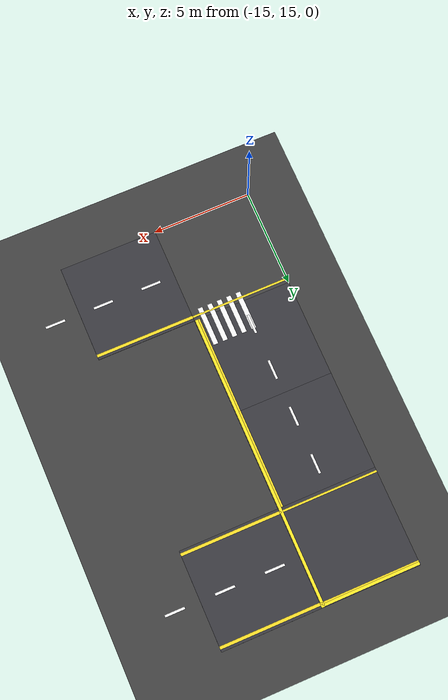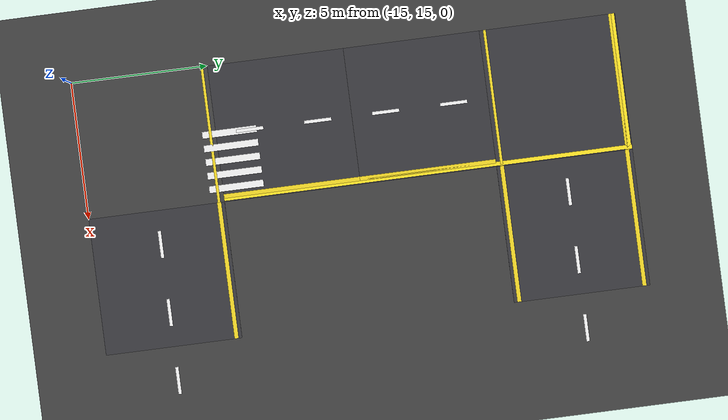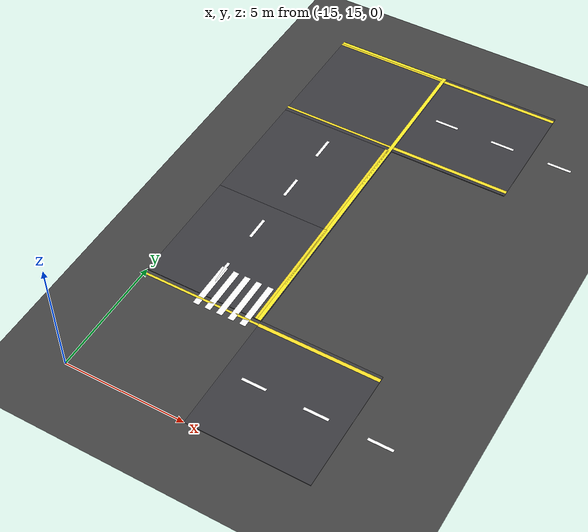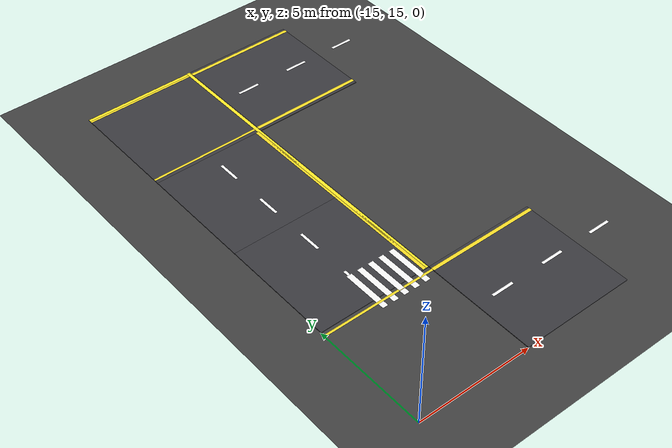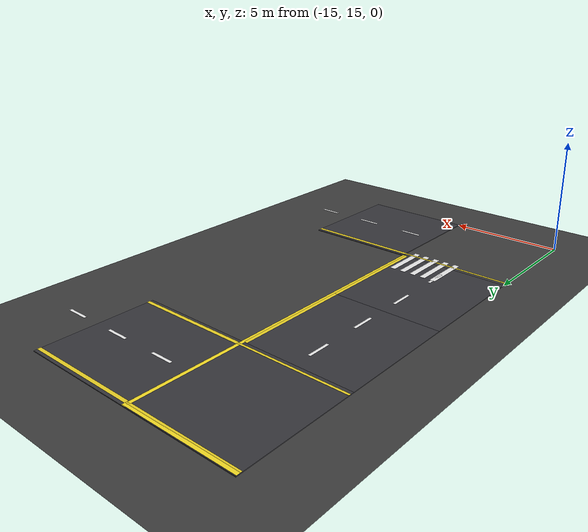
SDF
<sdf version="1.7">
 <world name="compact_city">
  <model name="ground_plane">
   <static>1</static>
   <pose>0 0 0.01 0 -0 0</pose>
   <link name="link">
    <collision name="collision">
     <geometry><plane><normal>0 0 1</normal><size>200 200</size></plane></geometry>
    </collision>
    <visual name="visual">
     <geometry><plane><normal>0 0 1</normal><size>200 200</size></plane></geometry>
     <material>
      <ambient>0.2 0.2 0.2 1</ambient>
      <diffuse>0.25 0.25 0.25 1</diffuse>
      <specular>0.1 0.1 0.1 1</specular>
     </material>
    </visual>
   </link>
  </model>
  <model name="road_tile_4">
   <static>1</static>
   <pose>-12.5 32.5 0.015 0 -0 0</pose>
   <link name="link">
    <collision name="collision"><geometry><box><size>5 5 0.03</size></box></geometry></collision>
    <visual name="visual">
     <geometry><box><size>5 5 0.03</size></box></geometry>
     <material>
      <ambient>0.18 0.18 0.2 1</ambient>
      <diffuse>0.22 0.22 0.24 1</diffuse>
      <specular>0.1 0.1 0.1 1</specular>
     </material>
    </visual>
   </link>
  </model>
  <model name="road_tile_5">
   <static>1</static>
   <pose>-7.5 32.5 0.015 0 -0 0</pose>
   <link name="link">
    <collision name="collision"><geometry><box><size>5 5 0.03</size></box></geometry></collision>
    <visual name="visual">
     <geometry><box><size>5 5 0.03</size></box></geometry>
     <material>
      <ambient>0.18 0.18 0.2 1</ambient>
      <diffuse>0.22 0.22 0.24 1</diffuse>
      <specular>0.1 0.1 0.1 1</specular>
     </material>
    </visual>
   </link>
  </model>
  <model name="road_tile_14">
   <static>1</static>
   <pose>-12.5 27.5 0.015 0 -0 1.5708</pose>
   <link name="link">
    <collision name="collision"><geometry><box><size>5 5 0.03</size></box></geometry></collision>
    <visual name="visual">
     <geometry><box><size>5 5 0.03</size></box></geometry>
     <material>
      <ambient>0.18 0.18 0.2 1</ambient>
      <diffuse>0.22 0.22 0.24 1</diffuse>
      <specular>0.1 0.1 0.1 1</specular>
     </material>
    </visual>
   </link>
  </model>
  <model name="road_tile_18">
   <static>1</static>
   <pose>-12.5 22.5 0.015 0 -0 1.5708</pose>
   <link name="link">
    <collision name="collision"><geometry><box><size>5 5 0.03</size></box></geometry></collision>
    <visual name="visual">
     <geometry><box><size>5 5 0.03</size></box></geometry>
     <material>
      <ambient>0.18 0.18 0.2 1</ambient>
      <diffuse>0.22 0.22 0.24 1</diffuse>
      <specular>0.1 0.1 0.1 1</specular>
     </material>
    </visual>
   </link>
  </model>
  <model name="road_tile_25">
   <static>1</static>
   <pose>-7.5 17.5 0.015 0 -0 0</pose>
   <link name="link">
    <collision name="collision"><geometry><box><size>5 5 0.03</size></box></geometry></collision>
    <visual name="visual">
     <geometry><box><size>5 5 0.03</size></box></geometry>
     <material>
      <ambient>0.18 0.18 0.2 1</ambient>
      <diffuse>0.22 0.22 0.24 1</diffuse>
      <specular>0.1 0.1 0.1 1</specular>
     </material>
    </visual>
   </link>
  </model>
  <model name="el_176">
   <static>1</static>
   <pose>-10.2 22.5 0.038 0 -0 1.5708</pose>
   <link name="link">
    <visual name="v">
     <geometry><box><size>5 0.15 0.002</size></box></geometry>
     <material><ambient>0.9 0.8 0.1 1</ambient><diffuse>0.95 0.85 0.15 1</diffuse></material>
    </visual>
   </link>
  </model>
  <model name="el_178">
   <static>1</static>
   <pose>-10.2 27.5 0.038 0 -0 1.5708</pose>
   <link name="link">
    <visual name="v">
     <geometry><box><size>5 0.15 0.002</size></box></geometry>
     <material><ambient>0.9 0.8 0.1 1</ambient><diffuse>0.95 0.85 0.15 1</diffuse></material>
    </visual>
   </link>
  </model>
  <model name="el_184">
   <static>1</static>
   <pose>-7.5 19.8 0.038 0 -0 0</pose>
   <link name="link">
    <visual name="v">
     <geometry><box><size>5 0.15 0.002</size></box></geometry>
     <material><ambient>0.9 0.8 0.1 1</ambient><diffuse>0.95 0.85 0.15 1</diffuse></material>
    </visual>
   </link>
  </model>
  <model name="el_185">
   <static>1</static>
   <pose>-7.5 30.2 0.038 0 -0 0</pose>
   <link name="link">
    <visual name="v">
     <geometry><box><size>5 0.15 0.002</size></box></geometry>
     <material><ambient>0.9 0.8 0.1 1</ambient><diffuse>0.95 0.85 0.15 1</diffuse></material>
    </visual>
   </link>
  </model>
  <model name="el_186">
   <static>1</static>
   <pose>-7.5 34.8 0.038 0 -0 0</pose>
   <link name="link">
    <visual name="v">
     <geometry><box><size>5 0.15 0.002</size></box></geometry>
     <material><ambient>0.9 0.8 0.1 1</ambient><diffuse>0.95 0.85 0.15 1</diffuse></material>
    </visual>
   </link>
  </model>
  <model name="ld_29">
   <static>1</static>
   <pose>-12.5000 21.2500 0.038 0 -0 1.5708</pose>
   <link name="link">
    <visual name="v">
     <geometry><box><size>1 0.12 0.002</size></box></geometry>
     <material><ambient>1 1 1 1</ambient><diffuse>0.95 0.95 0.95 1</diffuse></material>
    </visual>
   </link>
  </model>
  <model name="ld_30">
   <static>1</static>
   <pose>-12.5000 23.7500 0.038 0 -0 1.5708</pose>
   <link name="link">
    <visual name="v">
     <geometry><box><size>1 0.12 0.002</size></box></geometry>
     <material><ambient>1 1 1 1</ambient><diffuse>0.95 0.95 0.95 1</diffuse></material>
    </visual>
   </link>
  </model>
  <model name="ld_31">
   <static>1</static>
   <pose>-12.5000 26.2500 0.038 0 -0 1.5708</pose>
   <link name="link">
    <visual name="v">
     <geometry><box><size>1 0.12 0.002</size></box></geometry>
     <material><ambient>1 1 1 1</ambient><diffuse>0.95 0.95 0.95 1</diffuse></material>
    </visual>
   </link>
  </model>
  <model name="ld_32">
   <static>1</static>
   <pose>-12.5000 28.7500 0.038 0 -0 1.5708</pose>
   <link name="link">
    <visual name="v">
     <geometry><box><size>1 0.12 0.002</size></box></geometry>
     <material><ambient>1 1 1 1</ambient><diffuse>0.95 0.95 0.95 1</diffuse></material>
    </visual>
   </link>
  </model>
  <model name="ld_73">
   <static>1</static>
   <pose>-8.7500 32.5000 0.038 0 0 0</pose>
   <link name="link">
    <visual name="v">
     <geometry><box><size>1 0.12 0.002</size></box></geometry>
     <material><ambient>1 1 1 1</ambient><diffuse>0.95 0.95 0.95 1</diffuse></material>
    </visual>
   </link>
  </model>
  <model name="ld_74">
   <static>1</static>
   <pose>-6.2500 32.5000 0.038 0 0 0</pose>
   <link name="link">
    <visual name="v">
     <geometry><box><size>1 0.12 0.002</size></box></geometry>
     <material><ambient>1 1 1 1</ambient><diffuse>0.95 0.95 0.95 1</diffuse></material>
    </visual>
   </link>
  </model>
  <model name="ld_75">
   <static>1</static>
   <pose>-3.7500 32.5000 0.038 0 0 0</pose>
   <link name="link">
    <visual name="v">
     <geometry><box><size>1 0.12 0.002</size></box></geometry>
     <material><ambient>1 1 1 1</ambient><diffuse>0.95 0.95 0.95 1</diffuse></material>
    </visual>
   </link>
  </model>
  <model name="ld_89">
   <static>1</static>
   <pose>-8.7500 17.5000 0.038 0 0 0</pose>
   <link name="link">
    <visual name="v">
     <geometry><box><size>1 0.12 0.002</size></box></geometry>
     <material><ambient>1 1 1 1</ambient><diffuse>0.95 0.95 0.95 1</diffuse></material>
    </visual>
   </link>
  </model>
  <model name="ld_90">
   <static>1</static>
   <pose>-6.2500 17.5000 0.038 0 0 0</pose>
   <link name="link">
    <visual name="v">
     <geometry><box><size>1 0.12 0.002</size></box></geometry>
     <material><ambient>1 1 1 1</ambient><diffuse>0.95 0.95 0.95 1</diffuse></material>
    </visual>
   </link>
  </model>
  <model name="ld_91">
   <static>1</static>
   <pose>-3.7500 17.5000 0.038 0 0 0</pose>
   <link name="link">
    <visual name="v">
     <geometry><box><size>1 0.12 0.002</size></box></geometry>
     <material><ambient>1 1 1 1</ambient><diffuse>0.95 0.95 0.95 1</diffuse></material>
    </visual>
   </link>
  </model>
  <model name="ie_293">
   <static>1</static>
   <pose>-12.5 19.8 0.038 0 -0 0</pose>
   <link name="link">
    <visual name="v">
     <geometry><box><size>5 0.1 0.002</size></box></geometry>
     <material><ambient>0.9 0.8 0.1 1</ambient><diffuse>0.95 0.85 0.15 1</diffuse></material>
    </visual>
   </link>
  </model>
  <model name="ie_298">
   <static>1</static>
   <pose>-12.5 30.2 0.038 0 -0 0</pose>
   <link name="link">
    <visual name="v">
     <geometry><box><size>5 0.1 0.002</size></box></geometry>
     <material><ambient>0.9 0.8 0.1 1</ambient><diffuse>0.95 0.85 0.15 1</diffuse></material>
    </visual>
   </link>
  </model>
  <model name="ie_299">
   <static>1</static>
   <pose>-12.5 34.8 0.038 0 -0 0</pose>
   <link name="link">
    <visual name="v">
     <geometry><box><size>5 0.1 0.002</size></box></geometry>
     <material><ambient>0.9 0.8 0.1 1</ambient><diffuse>0.95 0.85 0.15 1</diffuse></material>
    </visual>
   </link>
  </model>
  <model name="edge_v_34">
   <static>1</static>
   <pose>-10.1 27.5 0.038 0 -0 1.5708</pose>
   <link name="link">
    <visual name="visual">
     <geometry><box><size>15 0.15 0.002</size></box></geometry>
     <material><ambient>0.95 0.85 0.1 1</ambient><diffuse>1 0.9 0.15 1</diffuse></material>
    </visual>
   </link>
  </model>
  <model name="tedge_495">
   <static>1</static>
   <pose>-12.5 34.9 0.038 0 -0 0</pose>
   <link name="link">
    <visual name="visual">
     <geometry><box><size>5 0.15 0.002</size></box></geometry>
     <material><ambient>0.95 0.85 0.1 1</ambient><diffuse>1 0.9 0.15 1</diffuse></material>
    </visual>
   </link>
  </model>
  <model name="xwalk_577">
   <static>1</static>
   <pose>-12.5 20.5 0.038 0 -0 1.5708</pose>
   <link name="link">
    <visual name="visual">
     <geometry><box><size>2 0.25 0.002</size></box></geometry>
     <material><ambient>1 1 1 1</ambient><diffuse>0.95 0.95 0.95 1</diffuse></material>
    </visual>
   </link>
  </model>
  <model name="xwalk_578">
   <static>1</static>
   <pose>-12 20.5 0.038 0 -0 1.5708</pose>
   <link name="link">
    <visual name="visual">
     <geometry><box><size>2 0.25 0.002</size></box></geometry>
     <material><ambient>1 1 1 1</ambient><diffuse>0.95 0.95 0.95 1</diffuse></material>
    </visual>
   </link>
  </model>
  <model name="xwalk_579">
   <static>1</static>
   <pose>-11.5 20.5 0.038 0 -0 1.5708</pose>
   <link name="link">
    <visual name="visual">
     <geometry><box><size>2 0.25 0.002</size></box></geometry>
     <material><ambient>1 1 1 1</ambient><diffuse>0.95 0.95 0.95 1</diffuse></material>
    </visual>
   </link>
  </model>
  <model name="xwalk_580">
   <static>1</static>
   <pose>-11 20.5 0.038 0 -0 1.5708</pose>
   <link name="link">
    <visual name="visual">
     <geometry><box><size>2 0.25 0.002</size></box></geometry>
     <material><ambient>1 1 1 1</ambient><diffuse>0.95 0.95 0.95 1</diffuse></material>
    </visual>
   </link>
  </model>
  <model name="xwalk_581">
   <static>1</static>
   <pose>-10.5 20.5 0.038 0 -0 1.5708</pose>
   <link name="link">
    <visual name="visual">
     <geometry><box><size>2 0.25 0.002</size></box></geometry>
     <material><ambient>1 1 1 1</ambient><diffuse>0.95 0.95 0.95 1</diffuse></material>
    </visual>
   </link>
  </model>
 </world>
</sdf>
